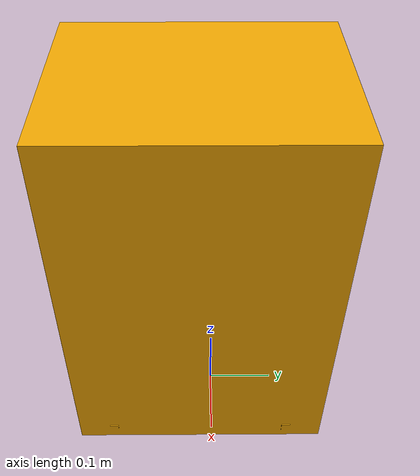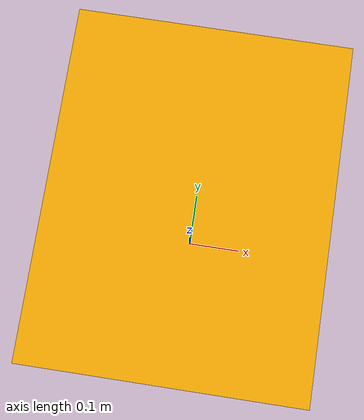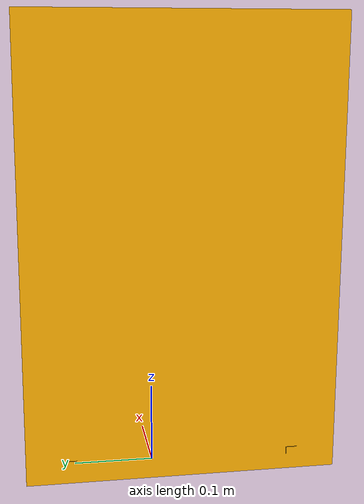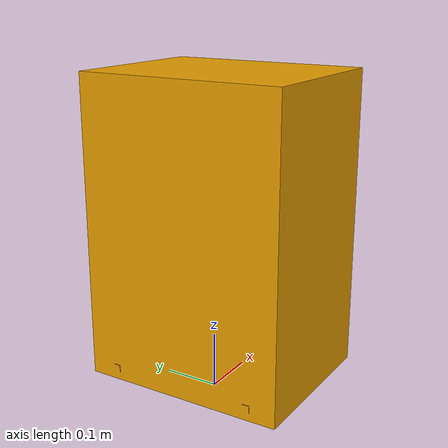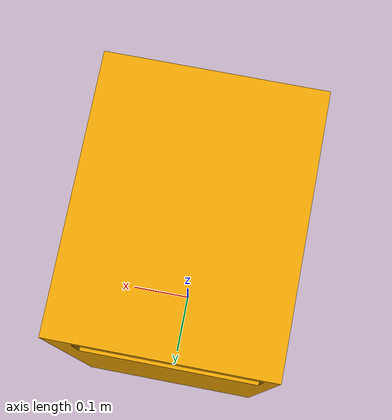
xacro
<?xml version="1.0"?>
<robot name="bulldozer_bot"
  xmlns:xacro="http://www.ros.org/wiki/xacro">

  <material name="camera_grey">
    <color rgba="0.81 0.81 0.81 1.0" />
  </material>

  <material name="lidar_black">
    <color rgba="0.22 0.22 0.22 1.0" />
  </material>

  <link name="base_link">
    <visual>
      <geometry>
        <mesh filename="package://custom_urdf/src/meshes/my_urdf/base_footprint.STL"  />
      </geometry>
      <origin xyz="0 0 0.1625" rpy="0 0 1.5708" />
    </visual>
    <collision>
      <geometry>
        <mesh filename="package://custom_urdf/src/meshes/my_urdf/base_footprint.STL"  />
      </geometry>
      <origin xyz="0 0 0.1625" rpy="0 0 1.5708" />
    </collision>
    <inertial>
      <mass value="25.0" />
      <origin xyz="0 0 0.1625" />
      <inertia ixx="1.3669" ixy="0.0" ixz="0.0" iyy="3.3602" iyz="0.0" izz="4.7271" />
    </inertial>
  </link>

  <link name="front_right_wheel_link">
    <inertial>
      <mass value="2.27" />
      <origin xyz="0 0 0" />
      <inertia ixx="0.0255" ixy="0.0" ixz="0.0" iyy="0.0255" iyz="0.0" izz="0.0510" />
    </inertial>
    <collision>
      <geometry>
        <cylinder length="0.127" radius="0.1016" />
      </geometry>
      <origin xyz="0 0 0" rpy="1.5708 0 0" />
    </collision>
  </link>

  <link name="front_left_wheel_link">
    <inertial>
      <mass value="2.27" />
      <origin xyz="0 0 0" />
      <inertia ixx="0.0255" ixy="0.0" ixz="0.0" iyy="0.0255" iyz="0.0" izz="0.0510" />
    </inertial>
    <collision>
      <geometry>
        <cylinder length="0.127" radius="0.1016" />
      </geometry>
      <origin xyz="0 0 0" rpy="-1.5708 0 0" />
    </collision>
  </link>

  <link name="rear_right_wheel_link">
    <inertial>
      <mass value="2.27" />
      <origin xyz="0 0 0" />
      <inertia ixx="0.0255" ixy="0.0" ixz="0.0" iyy="0.0255" iyz="0.0" izz="0.0510" />
    </inertial>
    <collision>
      <geometry>
        <cylinder length="0.127" radius="0.1016" />
      </geometry>
      <origin xyz="0 0 0" rpy="1.5708 0 0" />
    </collision>
  </link>

  <link name="rear_left_wheel_link">
    <inertial>
      <mass value="2.27" />
      <origin xyz="0 0 0" />
      <inertia ixx="0.0255" ixy="0.0" ixz="0.0" iyy="0.0255" iyz="0.0" izz="0.0510" />
    </inertial>
    <collision>
      <geometry>
        <cylinder length="0.127" radius="0.1016" />
      </geometry>
      <origin xyz="0 0 0" rpy="-1.5708 0 0" />
    </collision>
  </link>

  <joint name="base_rear_right_wheel_joint" type="fixed">
    <parent link="base_link" />
    <child link="rear_right_wheel_link" />
    <origin xyz="-0.235 -0.25 0.08" rpy="0 0 0" />
    <axis xyz="0 1 0" />
  </joint>

  <joint name="base_rear_left_wheel_joint" type="fixed">
    <parent link="base_link" />
    <child link="rear_left_wheel_link" />
    <origin xyz="-0.235 0.25 0.08" rpy="0 0 0" />
    <axis xyz="0 1 0" />
  </joint>

  <joint name="base_front_right_wheel_joint" type="fixed">
    <parent link="base_link" />
    <child link="front_right_wheel_link" />
    <origin xyz="0.215 -0.25 0.08" rpy="0 0 0" />
    <axis xyz="0 1 0" />
  </joint>

  <joint name="base_front_left_wheel_joint" type="fixed">
    <parent link="base_link" />
    <child link="front_left_wheel_link" />
    <origin xyz="0.215 0.25 0.08" rpy="0 0 0" />
    <axis xyz="0 1 0" />
  </joint>

</robot>
